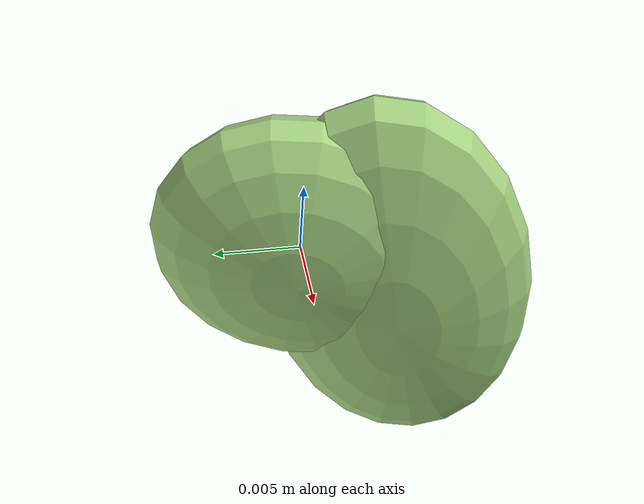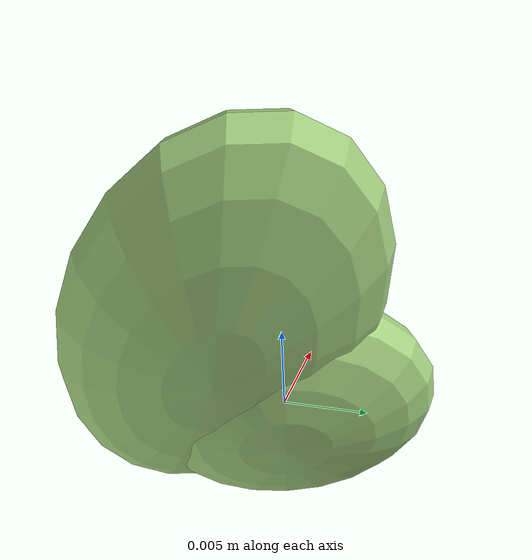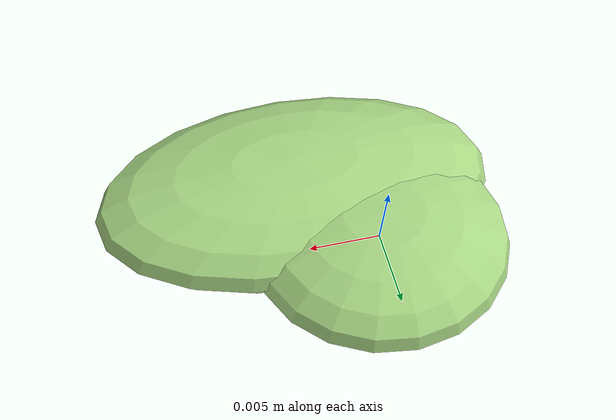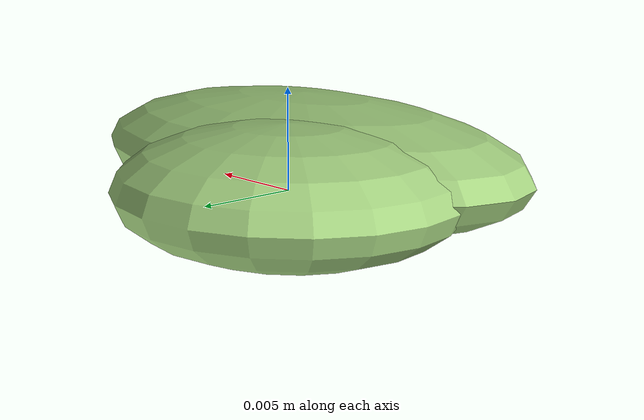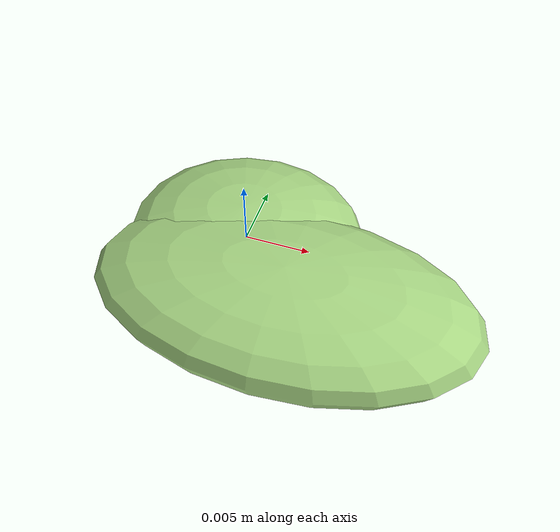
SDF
<?xml version="1.0" ?>
<!-- |    This document was autogenerated by xmacro from data/veggie_template/veggie_base.sdf.xacro  | -->
<!-- |    EDITING THIS FILE BY HAND IS NOT RECOMMENDED                                               | -->
<sdf version="1.8">
	<!-- Parameters -->
	<!-- Base -->
	<!-- Joint 0 -->
	<!-- Link 1 -->
	<!-- Joint 1 -->
	<!-- Link 2 -->
	<!-- Primitives -->
	<!-- All dimensions are half -->
	<!-- Object -->
	<model name="veggie">
		<!-- link0 -->
		<link name="link0">
			<inertial>
				<mass>0.0010351859914330087</mass>
				<inertia>
					<ixx>1.6594182205104662e-08</ixx>
					<ixy>0</ixy>
					<ixz>0</ixz>
					<iyy>1.9191292541184266e-08</iyy>
					<iyz>0</iyz>
					<izz>3.134044102245785e-08</izz>
				</inertia>
			</inertial>
			<visual name="link0_visual">
				<pose>0 0 0 0 0 0</pose>
				<geometry>
					<ellipsoid>
						<radii>0.009053178080902318 0.008331618140038372 0.0032764107432770614</radii>
					</ellipsoid>
				</geometry>
				<material>
					<ambient>0.659 0.839 0.514 1</ambient>
					<diffuse>0.659 0.839 0.514 1</diffuse>
					<specular>0 0 0 0</specular>
					<emissive>0 0 0 1</emissive>
				</material>
			</visual>
			<collision name="link0_collision">
				<pose>0 0 0 0 0 0 </pose>
				<geometry>
					<ellipsoid>
						<radii>0.009053178080902318 0.008331618140038372 0.0032764107432770614</radii>
					</ellipsoid>
				</geometry>
			</collision>
		</link>
		<!-- link1 -->
		<joint name="joint0" type="fixed">
			<pose relative_to="link0">0.0048270535217019685 -0.005115240398229447 0.00040681190598635476 0.0 0.0 0.0</pose>
			<parent>link0</parent>
			<child>link1</child>
		</joint>
		<link name="link1">
			<pose relative_to="joint0">0 0 0 0 0 0</pose>
			<inertial>
				<mass>0.0016462237351458628</mass>
				<inertia>
					<ixx>2.5168463230114764e-08</ixx>
					<ixy>0</ixy>
					<ixz>0</ixz>
					<iyy>7.232765930220007e-08</iyy>
					<iyz>0</iyz>
					<izz>8.998820682544393e-08</izz>
				</inertia>
			</inertial>
			<visual name="link1_visual">
				<pose>0 0 0 0 0 0</pose>
				<geometry>
					<ellipsoid>
						<radii>0.01443176235471478 0.008064818472747865 0.0033766439496227037</radii>
					</ellipsoid>
				</geometry>
				<material>
					<ambient>0.659 0.839 0.514 1</ambient>
					<diffuse>0.659 0.839 0.514 1</diffuse>
					<specular>0 0 0 0</specular>
					<emissive>0 0 0 1</emissive>
				</material>
			</visual>
			<collision name="link1_collision">
				<pose>0 0 0 0 0 0 </pose>
				<geometry>
					<ellipsoid>
						<radii>0.01443176235471478 0.008064818472747865 0.0033766439496227037</radii>
					</ellipsoid>
				</geometry>
			</collision>
		</link>
		<!-- link2 -->
	</model>
</sdf>
